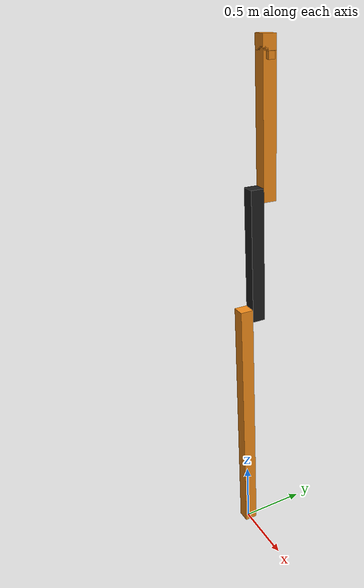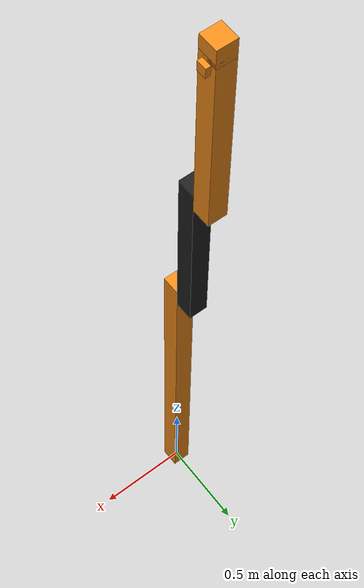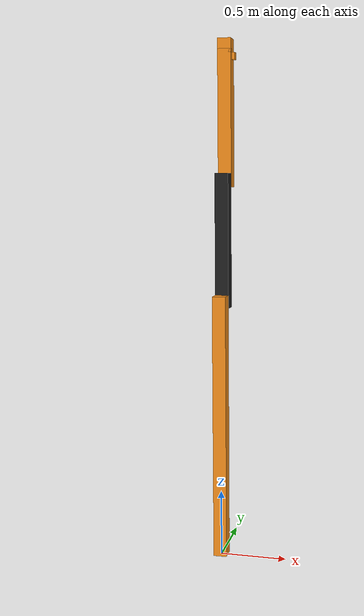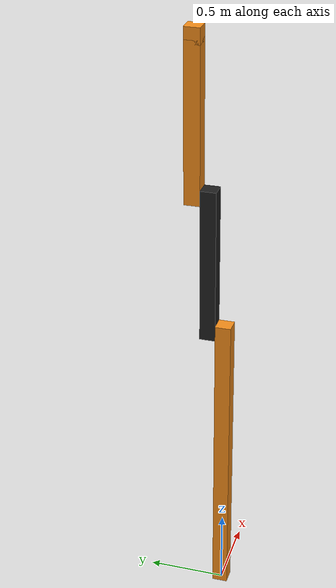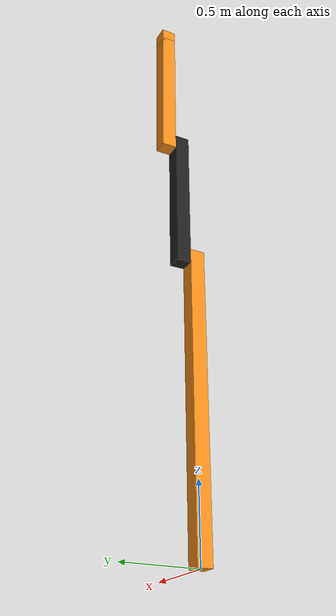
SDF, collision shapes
<?xml version="1.0" encoding="utf-8"?>
<sdf version='1.6'>
  <model name='rrbot'>
    <link name='link1'>
      <pose frame=''>0 0 0 0 -0 0</pose>
      <inertial>
        <pose frame=''>0 0 1 0 -0 0</pose>
        <mass>1</mass>
        <inertia>
          <ixx>0.334167</ixx>
          <ixy>0</ixy>
          <ixz>0</ixz>
          <iyy>0.334167</iyy>
          <iyz>0</iyz>
          <izz>0.00166667</izz>
        </inertia>
      </inertial>
      <collision name='link1_collision'>
        <pose frame=''>0 0 1 0 -0 0</pose>
        <geometry>
          <box>
            <size>0.1 0.1 2</size>
          </box>
        </geometry>
        <surface>
          <contact>
            <ode/>
          </contact>
          <friction>
            <ode/>
          </friction>
        </surface>
      </collision>
      <visual name='link1_visual'>
        <pose frame=''>0 0 1 0 -0 0</pose>
        <geometry>
          <box>
            <size>0.1 0.1 2</size>
          </box>
        </geometry>
        <material>
          <script>
            <name>Gazebo/Orange</name>
            <uri>file://media/materials/scripts/gazebo.material</uri>
          </script>
        </material>
      </visual>
      <gravity>1</gravity>
      <velocity_decay/>
      <self_collide>0</self_collide>
    </link>
    <joint name='fixed' type='revolute'>
      <child>link1</child>
      <parent>world</parent>
      <axis>
        <limit>
          <lower>0</lower>
          <upper>0</upper>
        </limit>
        <dynamics>
          <damping>0</damping>
          <friction>0</friction>
          <spring_reference>0</spring_reference>
          <spring_stiffness>0</spring_stiffness>
        </dynamics>
        <use_parent_model_frame>1</use_parent_model_frame>
        <xyz>0 0 1</xyz>
      </axis>
    </joint>
    <link name='link2'>
      <pose frame=''>0 0.1 1.95 0 -0 0</pose>
      <inertial>
        <pose frame=''>0 0 0.45 0 -0 0</pose>
        <mass>1</mass>
        <inertia>
          <ixx>0.0841667</ixx>
          <ixy>0</ixy>
          <ixz>0</ixz>
          <iyy>0.0841667</iyy>
          <iyz>0</iyz>
          <izz>0.00166667</izz>
        </inertia>
      </inertial>
      <collision name='link2_collision'>
        <pose frame=''>0 0 0.45 0 -0 0</pose>
        <geometry>
          <box>
            <size>0.1 0.1 1</size>
          </box>
        </geometry>
        <surface>
          <contact>
            <ode/>
          </contact>
          <friction>
            <ode>
              <mu>0.2</mu>
              <mu2>0.2</mu2>
            </ode>
          </friction>
        </surface>
      </collision>
      <visual name='link2_visual'>
        <pose frame=''>0 0 0.45 0 -0 0</pose>
        <geometry>
          <box>
            <size>0.1 0.1 1</size>
          </box>
        </geometry>
        <material>
          <script>
            <name>Gazebo/Black</name>
            <uri>file://media/materials/scripts/gazebo.material</uri>
          </script>
        </material>
      </visual>
      <gravity>1</gravity>
      <velocity_decay/>
      <self_collide>0</self_collide>
    </link>
    <joint name='joint1' type='revolute'>
      <child>link2</child>
      <parent>link1</parent>
      <axis>
        <xyz>0 1 0</xyz>
        <limit>
          <lower>-1e+16</lower>
          <upper>1e+16</upper>
        </limit>
        <dynamics>
          <damping>0.7</damping>
          <friction>0</friction>
          <spring_reference>0</spring_reference>
          <spring_stiffness>0</spring_stiffness>
        </dynamics>
        <use_parent_model_frame>1</use_parent_model_frame>
      </axis>
    </joint>
    <link name='link3'>
      <pose frame=''>0 0.2 2.85 0 -0 0</pose>
      <inertial>
        <pose frame=''>0 -2e-06 0.449965 0 -0 0</pose>
        <mass>1.00012</mass>
        <inertia>
          <ixx>0.0841937</ixx>
          <ixy>-7.99904e-13</ixy>
          <ixz>-2.25018e-07</ixz>
          <iyy>0.0841937</iyy>
          <iyz>-7.19944e-07</iyz>
          <izz>0.00166873</izz>
        </inertia>
      </inertial>
      <collision name='link3_collision'>
        <pose frame=''>0 0 0.45 0 -0 0</pose>
        <geometry>
          <box>
            <size>0.1 0.1 1</size>
          </box>
        </geometry>
        <surface>
          <contact>
            <ode/>
          </contact>
          <friction>
            <ode>
              <mu>0.2</mu>
              <mu2>0.2</mu2>
            </ode>
          </friction>
        </surface>
      </collision>
      <collision name='link3_fixed_joint_lump__camera_link_collision_1'>
        <pose frame=''>0.05 0 0.9 0 -0 0</pose>
        <geometry>
          <box>
            <size>0.05 0.05 0.05</size>
          </box>
        </geometry>
        <surface>
          <contact>
            <ode/>
          </contact>
          <friction>
            <ode>
              <mu>0.2</mu>
              <mu2>0.2</mu2>
            </ode>
          </friction>
        </surface>
      </collision>
      <collision name='link3_fixed_joint_lump__hokuyo_link_collision_2'>
        <pose frame=''>0 0 0.975 0 -0 0</pose>
        <geometry>
          <box>
            <size>0.1 0.1 0.1</size>
          </box>
        </geometry>
        <surface>
          <contact>
            <ode/>
          </contact>
          <friction>
            <ode/>
          </friction>
        </surface>
      </collision>
      <visual name='link3_visual'>
        <pose frame=''>0 0 0.45 0 -0 0</pose>
        <geometry>
          <box>
            <size>0.1 0.1 1</size>
          </box>
        </geometry>
        <material>
          <script>
            <name>Gazebo/Orange</name>
            <uri>file://media/materials/scripts/gazebo.material</uri>
          </script>
        </material>
      </visual>
      <visual name='link3_fixed_joint_lump__camera_link_visual_1'>
        <pose frame=''>0.05 0 0.9 0 -0 0</pose>
        <geometry>
          <box>
            <size>0.05 0.05 0.05</size>
          </box>
        </geometry>
        <material>
          <script>
            <name>Gazebo/Red</name>
            <uri>file://media/materials/scripts/gazebo.material</uri>
          </script>
        </material>
      </visual>
      <visual name='link3_fixed_joint_lump__display_visual_2'>
        <pose frame=''>0 -0.016 0 0.261799 -0 0</pose>
        <geometry>
          <box>
            <size>0.218 0.16 0.001</size>
          </box>
        </geometry>
        <plugin name='screen_video_controller' filename='libgazebo_ros_video.so'>
          <height>600</height>
          <width>1024</width>
          <topicName>/robot/xdisplay</topicName>
          <robotNamespace>/robot</robotNamespace>
        </plugin>
        <material>
          <script>
            <uri>__default__</uri>
            <name>__default__</name>
          </script>
        </material>
      </visual>
      <visual name='link3_fixed_joint_lump__hokuyo_link_visual_3'>
        <pose frame=''>0 0 0.975 0 -0 0</pose>
        <geometry>
          <mesh>
            <scale>1 1 1</scale>
            <uri>model://rrbot_description/meshes/hokuyo.dae</uri>
          </mesh>
        </geometry>
        <material>
          <script>
            <uri>__default__</uri>
            <name>__default__</name>
          </script>
        </material>
      </visual>
      <velocity_decay/>
      <velocity_decay/>
      <velocity_decay/>
      <sensor name='camera1' type='camera'>
        <update_rate>30</update_rate>
        <camera name='head'>
          <horizontal_fov>1.39626</horizontal_fov>
          <image>
            <width>800</width>
            <height>800</height>
            <format>R8G8B8</format>
          </image>
          <clip>
            <near>0.02</near>
            <far>300</far>
          </clip>
          <noise>
            <type>gaussian</type>
            <mean>0</mean>
            <stddev>0.007</stddev>
          </noise>
        </camera>
        <plugin name='camera_controller' filename='libgazebo_ros_camera.so'>
          <alwaysOn>true</alwaysOn>
          <updateRate>0.0</updateRate>
          <cameraName>rrbot/camera1</cameraName>
          <imageTopicName>image_raw</imageTopicName>
          <cameraInfoTopicName>camera_info</cameraInfoTopicName>
          <frameName>camera_link</frameName>
          <hackBaseline>0.07</hackBaseline>
          <distortionK1>0.0</distortionK1>
          <distortionK2>0.0</distortionK2>
          <distortionK3>0.0</distortionK3>
          <distortionT1>0.0</distortionT1>
          <distortionT2>0.0</distortionT2>
          <CxPrime>0</CxPrime>
          <Cx>0.0</Cx>
          <Cy>0.0</Cy>
          <focalLength>0.0</focalLength>
        </plugin>
        <pose frame=''>0.05 0 0.9 0 -0 0</pose>
      </sensor>
      <velocity_decay/>
      <gravity>1</gravity>
      <velocity_decay/>
      <self_collide>0</self_collide>
      <sensor name='head_hokuyo_sensor' type='gpu_ray'>
        <visualize>0</visualize>
        <update_rate>40</update_rate>
        <ray>
          <scan>
            <horizontal>
              <samples>720</samples>
              <resolution>1</resolution>
              <min_angle>-1.5708</min_angle>
              <max_angle>1.5708</max_angle>
            </horizontal>
          </scan>
          <range>
            <min>0.1</min>
            <max>30</max>
            <resolution>0.01</resolution>
          </range>
          <noise>
            <type>gaussian</type>
            <mean>0</mean>
            <stddev>0.01</stddev>
          </noise>
        </ray>
        <plugin name='gazebo_ros_head_hokuyo_controller' filename='libgazebo_ros_gpu_laser.so'>
          <topicName>/rrbot/laser/scan</topicName>
          <frameName>hokuyo_link</frameName>
        </plugin>
        <pose frame=''>0 0 0.975 0 -0 0</pose>
      </sensor>
    </link>
    <joint name='joint2' type='revolute'>
      <child>link3</child>
      <parent>link2</parent>
      <axis>
        <xyz>0 1 0</xyz>
        <limit>
          <lower>-1e+16</lower>
          <upper>1e+16</upper>
        </limit>
        <dynamics>
          <damping>0.7</damping>
          <friction>0</friction>
          <spring_reference>0</spring_reference>
          <spring_stiffness>0</spring_stiffness>
        </dynamics>
        <use_parent_model_frame>1</use_parent_model_frame>
      </axis>
    </joint>
    <static>0</static>
    <plugin name='gazebo_ros_control' filename='libgazebo_ros_control.so'>
      <robotNamespace>/rrbot</robotNamespace>
      <robotSimType>gazebo_ros_control/DefaultRobotHWSim</robotSimType>
    </plugin>
  </model>
</sdf>
